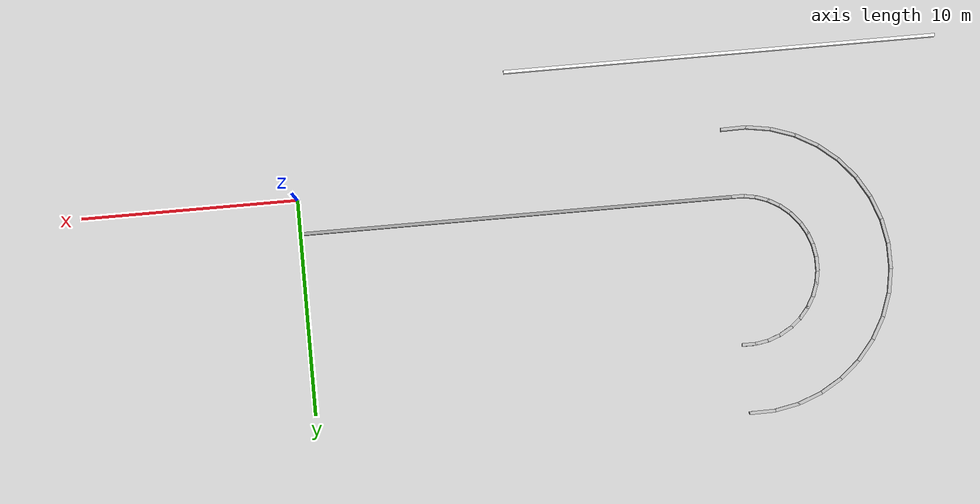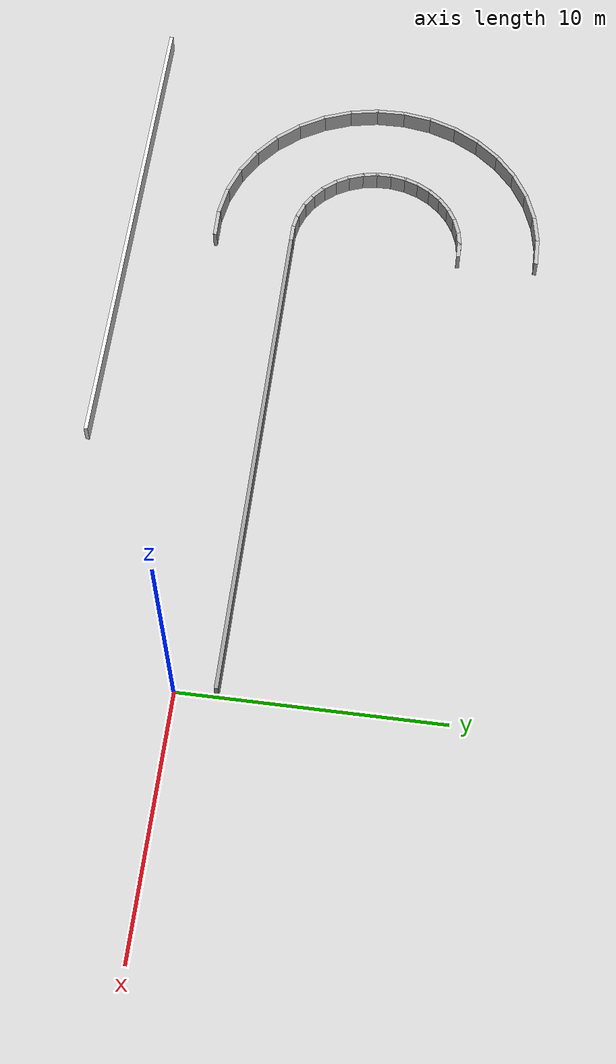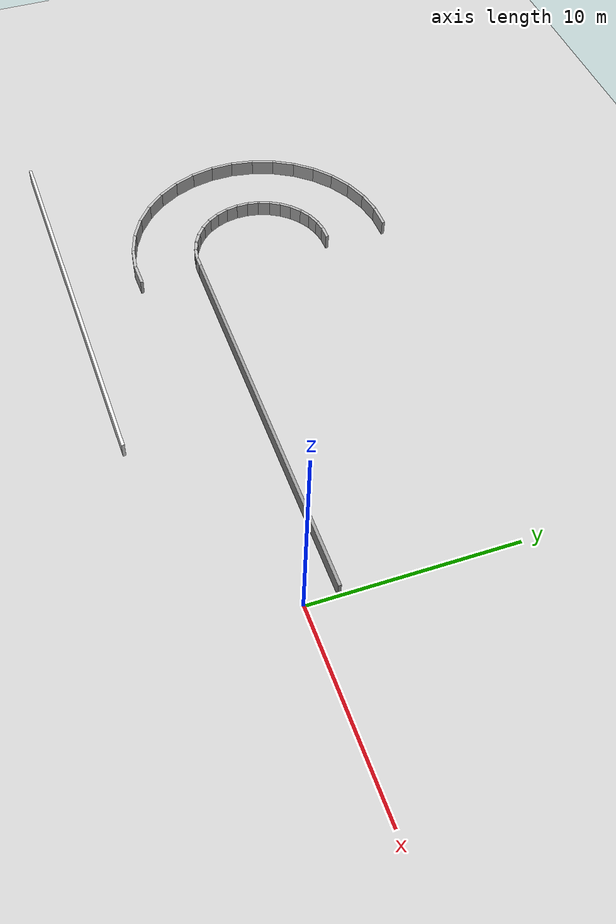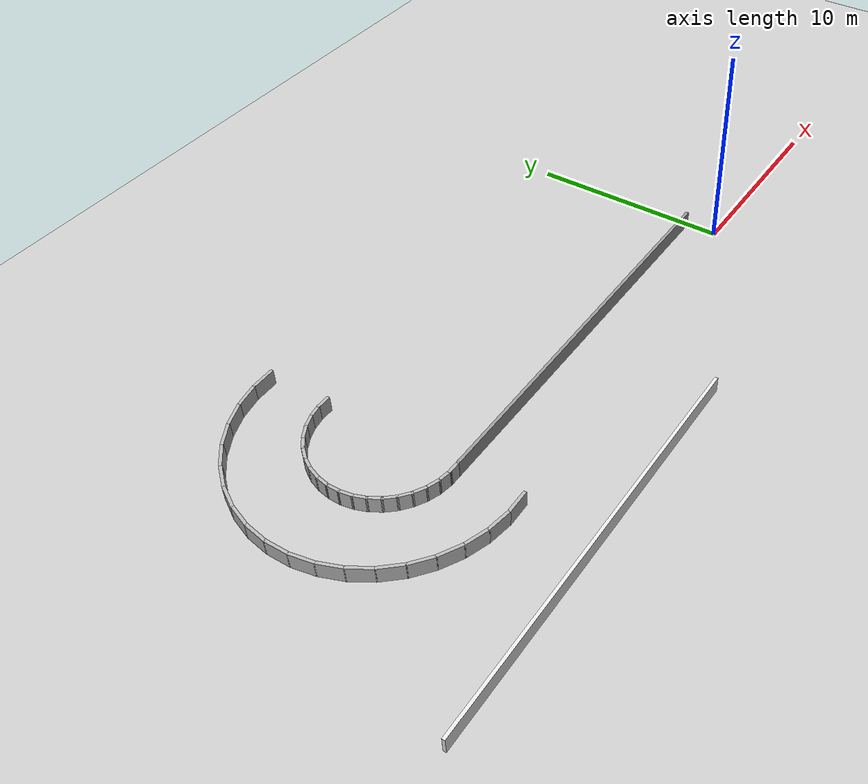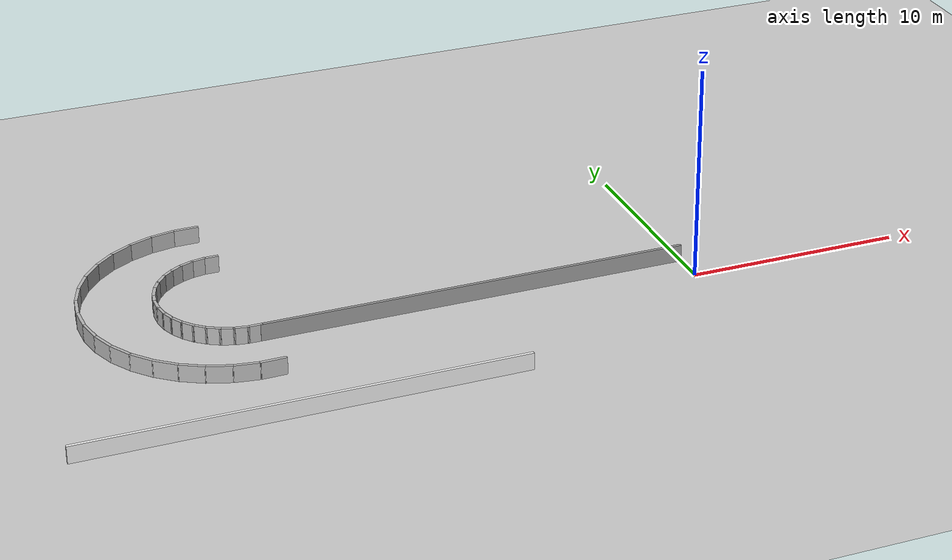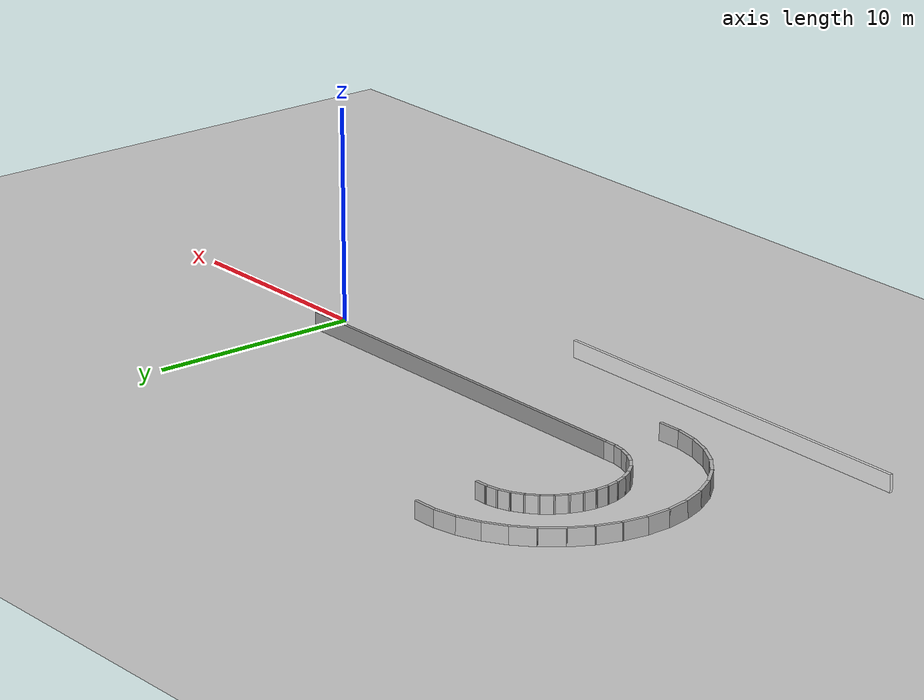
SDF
<sdf version="1.7">
 <world name="default">
  <light name="sun" type="directional">
   <pose>0 0 10 0 -0 0</pose>
   <diffuse>0.8 0.8 0.8 1</diffuse>
   <specular>0.2 0.2 0.2 1</specular>
   <attenuation>
    <range>1000</range>
    <constant>0.9</constant>
    <linear>0.01</linear>
    <quadratic>0.001</quadratic>
   </attenuation>
   <direction>-0.5 0.1 -0.9</direction>
   <spot><inner_angle>0</inner_angle><outer_angle>0</outer_angle><falloff>0</falloff></spot>
  </light>
  <model name="ground_plane">
   <static>1</static>
   <link name="link">
    <collision name="collision">
     <geometry><plane><normal>0 0 1</normal><size>100 100</size></plane></geometry>
     <surface><friction><ode><mu>100</mu><mu2>50</mu2></ode></friction></surface>
    </collision>
    <visual name="visual">
     <cast_shadows>0</cast_shadows>
     <geometry><plane><normal>0 0 1</normal><size>100 100</size></plane></geometry>
     <material>
      <script><uri>file://media/materials/scripts/gazebo.material</uri><name>Gazebo/Grey</name></script>
     </material>
    </visual>
   </link>
  </model>
  <gravity>0 0 -9.8</gravity>
  <magnetic_field>6e-06 2.3e-05 -4.2e-05</magnetic_field>
  <atmosphere type="adiabatic"/>
  <physics type="ode">
   <max_step_size>0.001</max_step_size>
   <real_time_factor>1</real_time_factor>
   <real_time_update_rate>1000</real_time_update_rate>
  </physics>
  <scene><ambient>0.4 0.4 0.4 1</ambient><background>0.7 0.7 0.7 1</background><shadows>1</shadows></scene>
  <audio><device>default</device></audio>
  <spherical_coordinates>
   <surface_model>EARTH_WGS84</surface_model>
   <latitude_deg>0</latitude_deg>
   <longitude_deg>0</longitude_deg>
   <elevation>0</elevation>
   <heading_deg>0</heading_deg>
  </spherical_coordinates>
  <model name="straight_barrier">
   <pose>-20 -0.075 0 0 -0 0</pose>
   <link name="Wall_4">
    <collision name="Wall_4_Collision">
     <geometry><box><size>20 0.15 0.8</size></box></geometry>
     <pose>0 0 0.4 0 -0 0</pose>
    </collision>
    <visual name="Wall_4_Visual">
     <pose>0 0 0.4 0 -0 0</pose>
     <geometry><box><size>20 0.15 0.8</size></box></geometry>
     <material>
      <script><uri>file://media/materials/scripts/gazebo.material</uri><name>Gazebo/Grey</name></script>
      <ambient>1 1 1 1</ambient>
     </material>
     <meta><layer>0</layer></meta>
    </visual>
    <pose>10 1.65 0 0 -0 0</pose>
   </link>
   <link name="Wall_7">
    <collision name="Wall_7_Collision">
     <geometry><box><size>20 0.15 0.8</size></box></geometry>
     <pose>0 0 0.4 0 -0 0</pose>
    </collision>
    <visual name="Wall_7_Visual">
     <pose>0 0 0.4 0 -0 0</pose>
     <geometry><box><size>20 0.15 0.8</size></box></geometry>
     <material>
      <script><uri>file://media/materials/scripts/gazebo.material</uri><name>Gazebo/White</name></script>
      <ambient>1 1 1 1</ambient>
     </material>
     <meta><layer>0</layer></meta>
    </visual>
    <pose>-0 -5 0 0 -0 0</pose>
   </link>
   <static>1</static>
  </model>
  <model name="arch35">
   <static>1</static>
   <link name="link_0">
    <pose>3.425 0 0.4 0 -0 0</pose>
    <collision name="col1"><geometry><box><size>0.15 0.7 0.8</size></box></geometry></collision>
    <visual name="vis1"><geometry><box><size>0.15 0.7 0.8</size></box></geometry></visual>
   </link>
   <link name="link_1">
    <pose>3.37297 0.594746 0.4 0 -0 0.174533</pose>
    <collision name="col1"><geometry><box><size>0.15 0.7 0.8</size></box></geometry></collision>
    <visual name="vis1"><geometry><box><size>0.15 0.7 0.8</size></box></geometry></visual>
   </link>
   <link name="link_2">
    <pose>3.21845 1.17142 0.4 0 -0 0.349067</pose>
    <collision name="col1"><geometry><box><size>0.15 0.7 0.8</size></box></geometry></collision>
    <visual name="vis1"><geometry><box><size>0.15 0.7 0.8</size></box></geometry></visual>
   </link>
   <link name="link_3">
    <pose>2.96613 1.7125 0.4 0 -0 0.5236</pose>
    <collision name="col1"><geometry><box><size>0.15 0.7 0.8</size></box></geometry></collision>
    <visual name="vis1"><geometry><box><size>0.15 0.7 0.8</size></box></geometry></visual>
   </link>
   <link name="link_4">
    <pose>2.6237 2.20155 0.4 0 -0 0.698133</pose>
    <collision name="col1"><geometry><box><size>0.15 0.7 0.8</size></box></geometry></collision>
    <visual name="vis1"><geometry><box><size>0.15 0.7 0.8</size></box></geometry></visual>
   </link>
   <link name="link_5">
    <pose>2.20154 2.62371 0.4 0 -0 0.872667</pose>
    <collision name="col1"><geometry><box><size>0.15 0.7 0.8</size></box></geometry></collision>
    <visual name="vis1"><geometry><box><size>0.15 0.7 0.8</size></box></geometry></visual>
   </link>
   <link name="link_6">
    <pose>1.71249 2.96614 0.4 0 -0 1.0472</pose>
    <collision name="col1"><geometry><box><size>0.15 0.7 0.8</size></box></geometry></collision>
    <visual name="vis1"><geometry><box><size>0.15 0.7 0.8</size></box></geometry></visual>
   </link>
   <link name="link_7">
    <pose>1.17141 3.21845 0.4 0 -0 1.22173</pose>
    <collision name="col1"><geometry><box><size>0.15 0.7 0.8</size></box></geometry></collision>
    <visual name="vis1"><geometry><box><size>0.15 0.7 0.8</size></box></geometry></visual>
   </link>
   <link name="link_8">
    <pose>0.594734 3.37297 0.4 0 -0 1.39627</pose>
    <collision name="col1"><geometry><box><size>0.15 0.7 0.8</size></box></geometry></collision>
    <visual name="vis1"><geometry><box><size>0.15 0.7 0.8</size></box></geometry></visual>
   </link>
   <link name="link_9">
    <pose>-1.3e-05 3.425 0.4 0 -0 1.5708</pose>
    <collision name="col1"><geometry><box><size>0.15 0.7 0.8</size></box></geometry></collision>
    <visual name="vis1"><geometry><box><size>0.15 0.7 0.8</size></box></geometry></visual>
   </link>
   <link name="link_10">
    <pose>-0.594759 3.37296 0.4 0 -0 1.74533</pose>
    <collision name="col1"><geometry><box><size>0.15 0.7 0.8</size></box></geometry></collision>
    <visual name="vis1"><geometry><box><size>0.15 0.7 0.8</size></box></geometry></visual>
   </link>
   <link name="link_11">
    <pose>-1.17143 3.21844 0.4 0 -0 1.91987</pose>
    <collision name="col1"><geometry><box><size>0.15 0.7 0.8</size></box></geometry></collision>
    <visual name="vis1"><geometry><box><size>0.15 0.7 0.8</size></box></geometry></visual>
   </link>
   <link name="link_12">
    <pose>-1.71252 2.96613 0.4 0 -0 2.0944</pose>
    <collision name="col1"><geometry><box><size>0.15 0.7 0.8</size></box></geometry></collision>
    <visual name="vis1"><geometry><box><size>0.15 0.7 0.8</size></box></geometry></visual>
   </link>
   <link name="link_13">
    <pose>-2.20156 2.62369 0.4 0 -0 2.26893</pose>
    <collision name="col1"><geometry><box><size>0.15 0.7 0.8</size></box></geometry></collision>
    <visual name="vis1"><geometry><box><size>0.15 0.7 0.8</size></box></geometry></visual>
   </link>
   <link name="link_14">
    <pose>-2.62371 2.20153 0.4 0 -0 2.44347</pose>
    <collision name="col1"><geometry><box><size>0.15 0.7 0.8</size></box></geometry></collision>
    <visual name="vis1"><geometry><box><size>0.15 0.7 0.8</size></box></geometry></visual>
   </link>
   <link name="link_15">
    <pose>-2.96615 1.71248 0.4 0 -0 2.618</pose>
    <collision name="col1"><geometry><box><size>0.15 0.7 0.8</size></box></geometry></collision>
    <visual name="vis1"><geometry><box><size>0.15 0.7 0.8</size></box></geometry></visual>
   </link>
   <link name="link_16">
    <pose>-3.21846 1.1714 0.4 0 -0 2.79253</pose>
    <collision name="col1"><geometry><box><size>0.15 0.7 0.8</size></box></geometry></collision>
    <visual name="vis1"><geometry><box><size>0.15 0.7 0.8</size></box></geometry></visual>
   </link>
   <link name="link_17">
    <pose>-3.37297 0.594722 0.4 0 -0 2.96707</pose>
    <collision name="col1"><geometry><box><size>0.15 0.7 0.8</size></box></geometry></collision>
    <visual name="vis1"><geometry><box><size>0.15 0.7 0.8</size></box></geometry></visual>
   </link>
   <link name="link_18">
    <pose>-3.425 -2.5e-05 0.4 0 -0 -3.14159</pose>
    <collision name="col1"><geometry><box><size>0.15 0.7 0.8</size></box></geometry></collision>
    <visual name="vis1"><geometry><box><size>0.15 0.7 0.8</size></box></geometry></visual>
   </link>
   <pose>-20.2477 5.00213 0 0 -0 1.57443</pose>
  </model>
  <model name="arch65">
   <static>1</static>
   <link name="link_0">
    <pose>6.575 0 0.4 0 -0 0</pose>
    <collision name="col1"><geometry><box><size>0.15 1.2 0.8</size></box></geometry></collision>
    <visual name="vis1"><geometry><box><size>0.15 1.2 0.8</size></box></geometry></visual>
   </link>
   <link name="link_1">
    <pose>6.47511 1.14174 0.4 0 -0 0.174533</pose>
    <collision name="col1"><geometry><box><size>0.15 1.2 0.8</size></box></geometry></collision>
    <visual name="vis1"><geometry><box><size>0.15 1.2 0.8</size></box></geometry></visual>
   </link>
   <link name="link_2">
    <pose>6.17848 2.24879 0.4 0 -0 0.349067</pose>
    <collision name="col1"><geometry><box><size>0.15 1.2 0.8</size></box></geometry></collision>
    <visual name="vis1"><geometry><box><size>0.15 1.2 0.8</size></box></geometry></visual>
   </link>
   <link name="link_3">
    <pose>5.69411 3.28751 0.4 0 -0 0.5236</pose>
    <collision name="col1"><geometry><box><size>0.15 1.2 0.8</size></box></geometry></collision>
    <visual name="vis1"><geometry><box><size>0.15 1.2 0.8</size></box></geometry></visual>
   </link>
   <link name="link_4">
    <pose>5.03674 4.22634 0.4 0 -0 0.698133</pose>
    <collision name="col1"><geometry><box><size>0.15 1.2 0.8</size></box></geometry></collision>
    <visual name="vis1"><geometry><box><size>0.15 1.2 0.8</size></box></geometry></visual>
   </link>
   <link name="link_5">
    <pose>4.22632 5.03675 0.4 0 -0 0.872667</pose>
    <collision name="col1"><geometry><box><size>0.15 1.2 0.8</size></box></geometry></collision>
    <visual name="vis1"><geometry><box><size>0.15 1.2 0.8</size></box></geometry></visual>
   </link>
   <link name="link_6">
    <pose>3.28749 5.69412 0.4 0 -0 1.0472</pose>
    <collision name="col1"><geometry><box><size>0.15 1.2 0.8</size></box></geometry></collision>
    <visual name="vis1"><geometry><box><size>0.15 1.2 0.8</size></box></geometry></visual>
   </link>
   <link name="link_7">
    <pose>2.24877 6.17849 0.4 0 -0 1.22173</pose>
    <collision name="col1"><geometry><box><size>0.15 1.2 0.8</size></box></geometry></collision>
    <visual name="vis1"><geometry><box><size>0.15 1.2 0.8</size></box></geometry></visual>
   </link>
   <link name="link_8">
    <pose>1.14172 6.47511 0.4 0 -0 1.39627</pose>
    <collision name="col1"><geometry><box><size>0.15 1.2 0.8</size></box></geometry></collision>
    <visual name="vis1"><geometry><box><size>0.15 1.2 0.8</size></box></geometry></visual>
   </link>
   <link name="link_9">
    <pose>-2.4e-05 6.575 0.4 0 -0 1.5708</pose>
    <collision name="col1"><geometry><box><size>0.15 1.2 0.8</size></box></geometry></collision>
    <visual name="vis1"><geometry><box><size>0.15 1.2 0.8</size></box></geometry></visual>
   </link>
   <link name="link_10">
    <pose>-1.14176 6.47511 0.4 0 -0 1.74533</pose>
    <collision name="col1"><geometry><box><size>0.15 1.2 0.8</size></box></geometry></collision>
    <visual name="vis1"><geometry><box><size>0.15 1.2 0.8</size></box></geometry></visual>
   </link>
   <link name="link_11">
    <pose>-2.24881 6.17847 0.4 0 -0 1.91987</pose>
    <collision name="col1"><geometry><box><size>0.15 1.2 0.8</size></box></geometry></collision>
    <visual name="vis1"><geometry><box><size>0.15 1.2 0.8</size></box></geometry></visual>
   </link>
   <link name="link_12">
    <pose>-3.28753 5.6941 0.4 0 -0 2.0944</pose>
    <collision name="col1"><geometry><box><size>0.15 1.2 0.8</size></box></geometry></collision>
    <visual name="vis1"><geometry><box><size>0.15 1.2 0.8</size></box></geometry></visual>
   </link>
   <link name="link_13">
    <pose>-4.22635 5.03672 0.4 0 -0 2.26893</pose>
    <collision name="col1"><geometry><box><size>0.15 1.2 0.8</size></box></geometry></collision>
    <visual name="vis1"><geometry><box><size>0.15 1.2 0.8</size></box></geometry></visual>
   </link>
   <link name="link_14">
    <pose>-5.03677 4.2263 0.4 0 -0 2.44347</pose>
    <collision name="col1"><geometry><box><size>0.15 1.2 0.8</size></box></geometry></collision>
    <visual name="vis1"><geometry><box><size>0.15 1.2 0.8</size></box></geometry></visual>
   </link>
   <link name="link_15">
    <pose>-5.69414 3.28747 0.4 0 -0 2.618</pose>
    <collision name="col1"><geometry><box><size>0.15 1.2 0.8</size></box></geometry></collision>
    <visual name="vis1"><geometry><box><size>0.15 1.2 0.8</size></box></geometry></visual>
   </link>
   <link name="link_16">
    <pose>-6.17849 2.24874 0.4 0 -0 2.79253</pose>
    <collision name="col1"><geometry><box><size>0.15 1.2 0.8</size></box></geometry></collision>
    <visual name="vis1"><geometry><box><size>0.15 1.2 0.8</size></box></geometry></visual>
   </link>
   <link name="link_17">
    <pose>-6.47512 1.14169 0.4 0 -0 2.96707</pose>
    <collision name="col1"><geometry><box><size>0.15 1.2 0.8</size></box></geometry></collision>
    <visual name="vis1"><geometry><box><size>0.15 1.2 0.8</size></box></geometry></visual>
   </link>
   <link name="link_18">
    <pose>-6.575 -4.8e-05 0.4 0 -0 -3.14159</pose>
    <collision name="col1"><geometry><box><size>0.15 1.2 0.8</size></box></geometry></collision>
    <visual name="vis1"><geometry><box><size>0.15 1.2 0.8</size></box></geometry></visual>
   </link>
   <pose>-20.4681 5.00745 0 0 -0 1.58586</pose>
  </model>
 </world>
</sdf>
